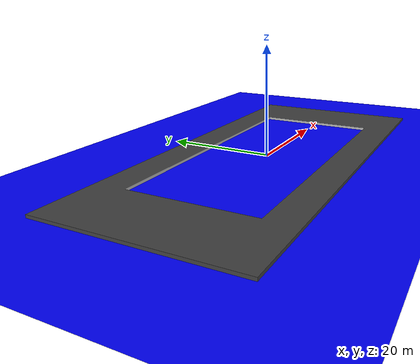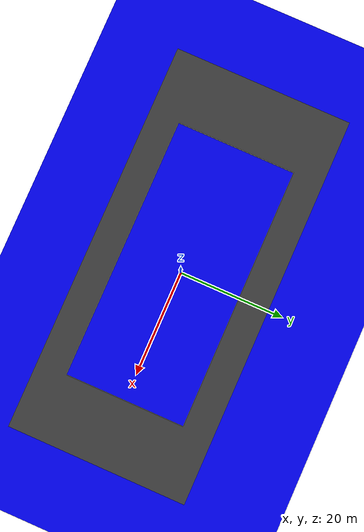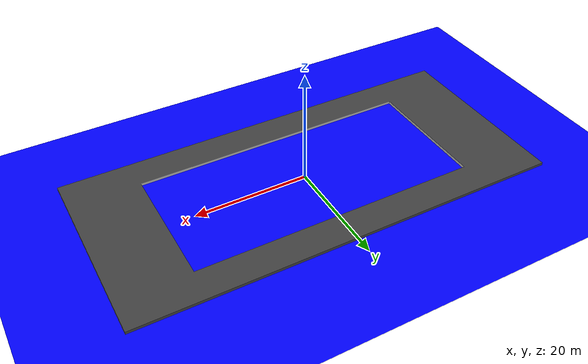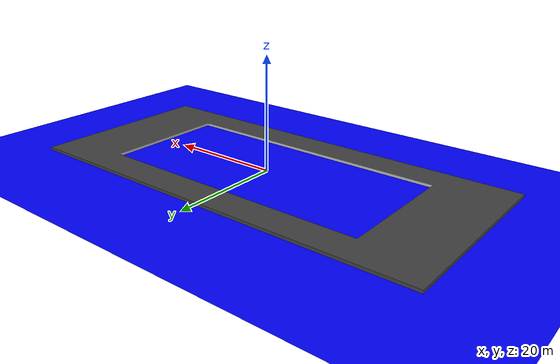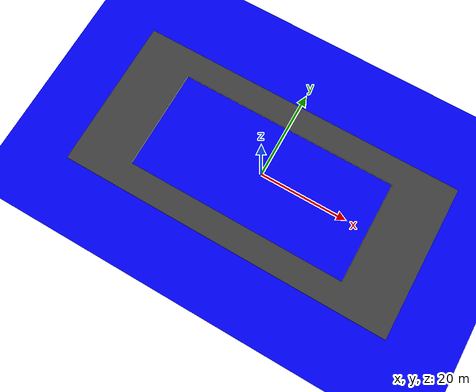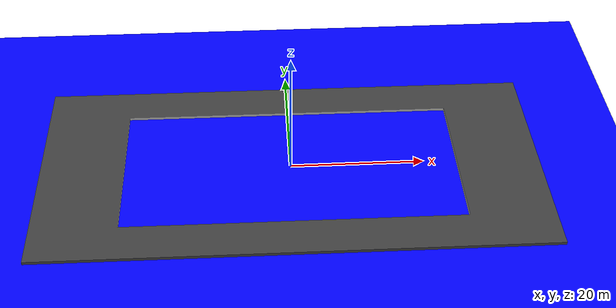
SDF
<?xml version="1.0"?>
<sdf version='1.10'>
  <world name='woolletPool_world'>
    <plugin name='gz::sim::systems::Physics' filename='gz-sim-physics-system'/>
    <plugin name='gz::sim::systems::UserCommands' filename='gz-sim-user-commands-system'/>
    <plugin name='gz::sim::systems::SceneBroadcaster' filename='gz-sim-scene-broadcaster-system'/>
    <plugin name='gz::sim::systems::Sensors' filename='gz-sim-sensors-system'>
      <render_engine>ogre2</render_engine>
    </plugin>

    <plugin
      filename="gz-sim-altimeter-system"
      name="gz::sim::systems::Altimeter">
    </plugin>
    <plugin
      filename="gz-sim-imu-system"
      name="gz::sim::systems::Imu">
    </plugin>
    <plugin
      filename="gz-sim-dvl-system"
      name="gz::sim::systems::DopplerVelocityLogSystem">
    </plugin>

    <gravity>0 0 -9.81</gravity>
    <magnetic_field>5.5645e-06 2.28758e-05 -4.23884e-05</magnetic_field>
    <atmosphere type='adiabatic'/>

    <physics type='ode'>
      <max_step_size>0.001</max_step_size>
      <real_time_factor>1</real_time_factor>
      <real_time_update_rate>1000</real_time_update_rate>
    </physics>

    <scene>
      <ambient>0.4 0.4 0.4 1</ambient>
      <background>0.7 0.7 0.7 1</background>
      <shadows>true</shadows>
    </scene>

    <!-- Water plane -->
    <model name='water_plane'>
      <static>true</static>
      <link name='link'>
        <visual name='water_plane'>
          <geometry>
            <plane>
              <size>100 100</size>
              <normal>0 0 1</normal>
            </plane>
          </geometry>
          <material>
            <ambient>0 0 1 0.5</ambient>
            <diffuse>0 0 1 0.5</diffuse>
            <specular>0 0 1 0.5</specular>
          </material>
        </visual>
        <pose>0 0 0 0 0 0</pose>
      </link>
      <pose>0 0 0 0 0 0</pose>
      <self_collide>false</self_collide>
    </model>

    <!-- Observer camera -->
    <model name='observer_camera'>
      <static>true</static>
      <pose>-4 0 2 0 0 0</pose>
      <link name='camera_link'>
        <sensor name='observer_camera_sensor' type='camera'>
          <pose>0 0 0 0 0 0</pose>
          <topic>/observer/image_raw</topic>
          <update_rate>30</update_rate>
          <camera name='__default__'>
            <horizontal_fov>1.047</horizontal_fov>
            <image>
              <width>640</width>
              <height>480</height>
              <format>RGB_INT8</format>
            </image>
            <clip>
              <near>0.1</near>
              <far>100</far>
            </clip>
          </camera>
        </sensor>
      </link>
      <self_collide>false</self_collide>
    </model>

    <!-- Woollett Pool model -->
    <model name='WoollettPool'>
      <link name='link'>
        <visual name='visual'>
          <geometry>
            <mesh>
              <uri>model://woollett_pool_2024/WoollettPool.dae</uri>
            </mesh>
          </geometry>
        </visual>
        <collision name='collision'>
          <geometry>
            <mesh>
              <uri>model://woollett_pool_2024/WoollettPool.dae</uri>
            </mesh>
          </geometry>
        </collision>
        <pose>0 0 0 0 0 0</pose>
      </link>
      <pose>0 0 0 0 0 1.57</pose>
      <static>true</static>
      <self_collide>false</self_collide>
    </model>

  </world>
</sdf>
